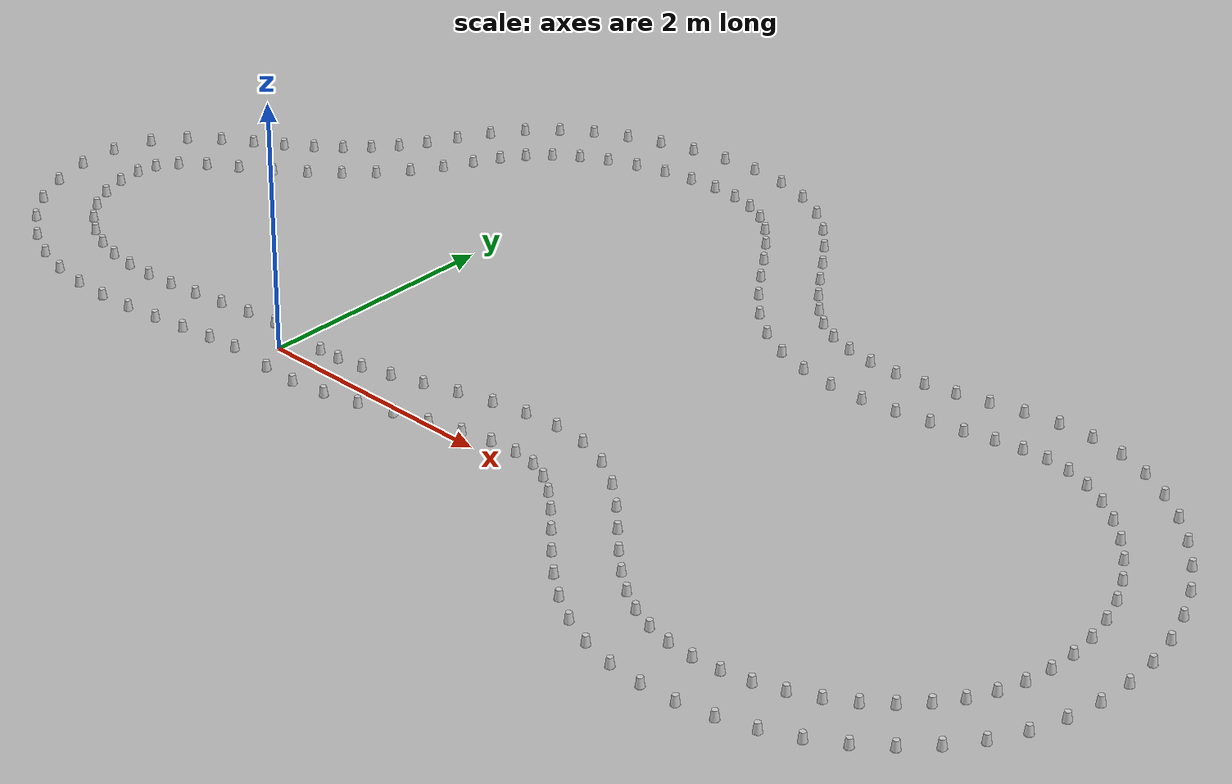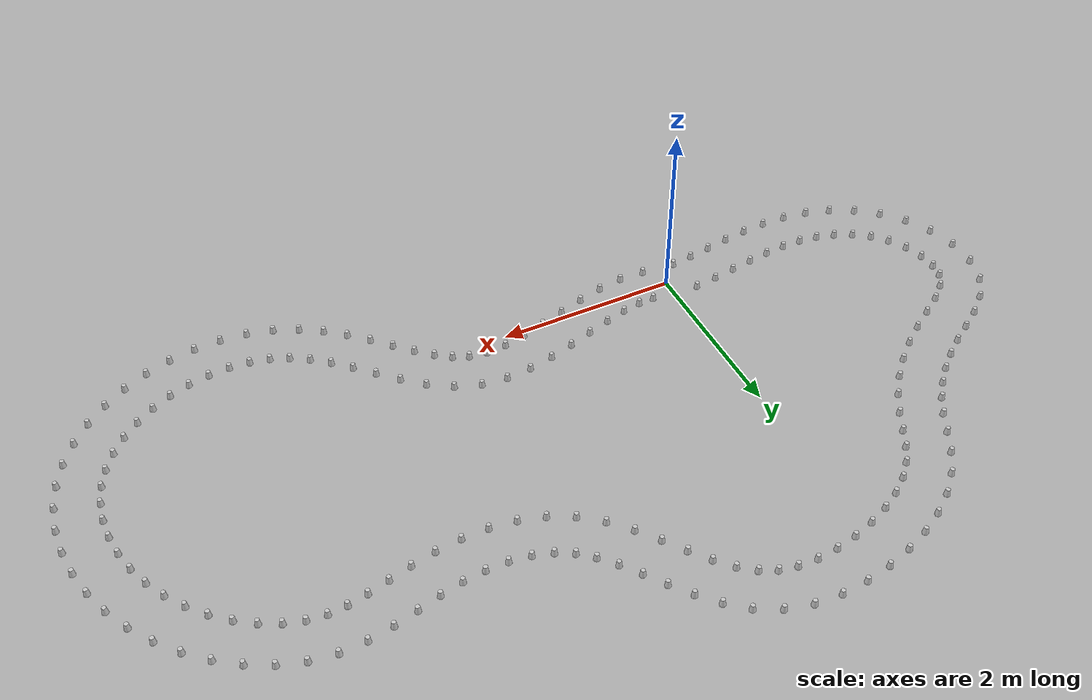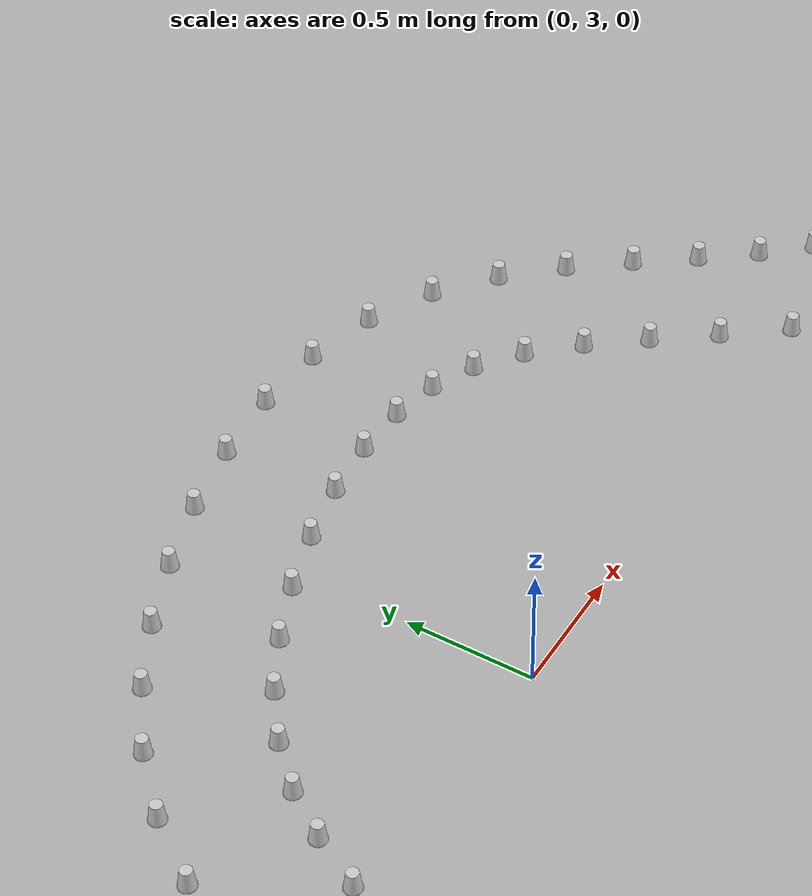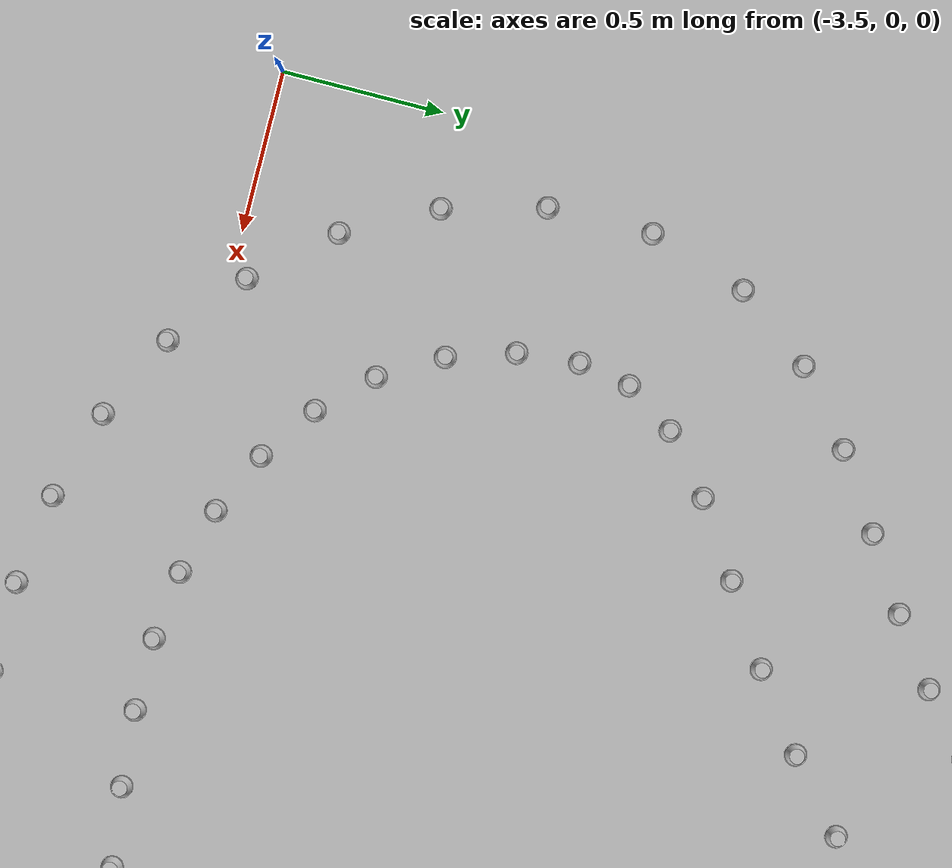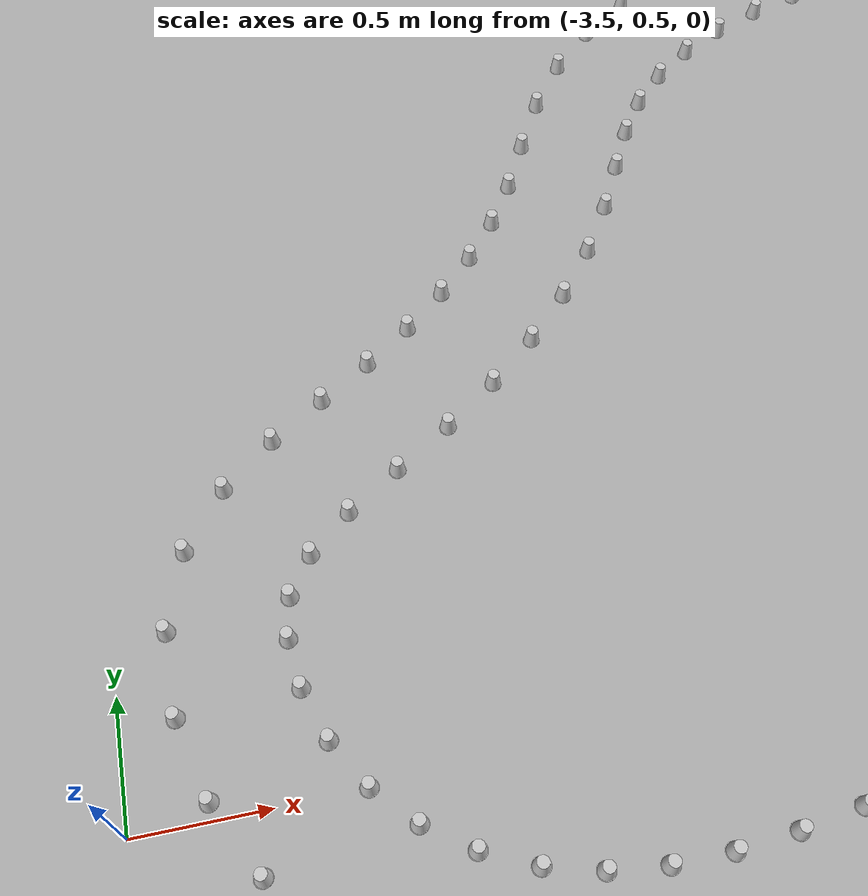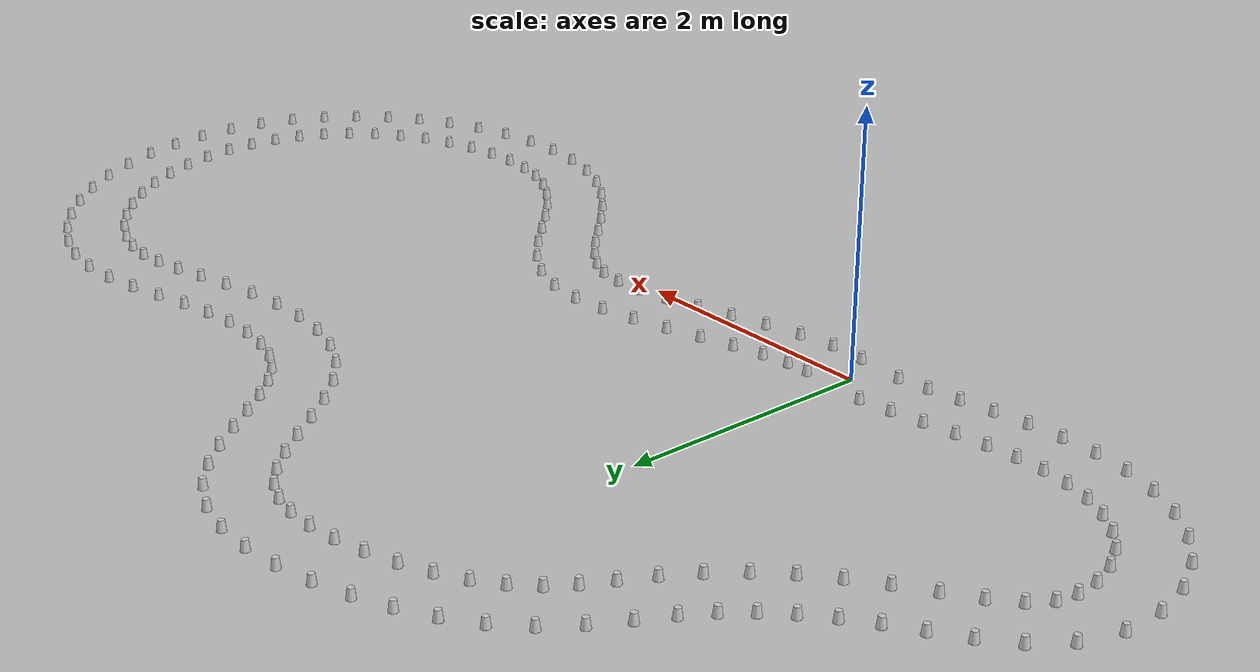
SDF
<?xml version='1.0' encoding='UTF-8'?>
<sdf version="1.4">
  <model name="some track">
    <include>
      <uri>model://cone_yellow</uri>
      <pose>0.16057702553425918 -0.2696065690785494 0 0 0 0</pose>
      <name>cone_right_0</name>
    </include>
    <include>
      <uri>model://cone_yellow</uri>
      <pose>0.4462135183603273 -0.27487489123374487 0 0 0 0</pose>
      <name>cone_right_1</name>
    </include>
    <include>
      <uri>model://cone_yellow</uri>
      <pose>0.7295635515692434 -0.23176047177801465 0 0 0 0</pose>
      <name>cone_right_2</name>
    </include>
    <include>
      <uri>model://cone_yellow</uri>
      <pose>1.009621545115699 -0.16014751046960102 0 0 0 0</pose>
      <name>cone_right_3</name>
    </include>
    <include>
      <uri>model://cone_yellow</uri>
      <pose>1.2860850442531968 -0.07525265990294092 0 0 0 0</pose>
      <name>cone_right_4</name>
    </include>
    <include>
      <uri>model://cone_yellow</uri>
      <pose>1.55693591314234 0.009820108914156661 0 0 0 0</pose>
      <name>cone_right_5</name>
    </include>
    <include>
      <uri>model://cone_yellow</uri>
      <pose>1.8184109718819805 0.08278212848105343 0 0 0 0</pose>
      <name>cone_right_6</name>
    </include>
    <include>
      <uri>model://cone_yellow</uri>
      <pose>2.065161582427895 0.13196095102887595 0 0 0 0</pose>
      <name>cone_right_7</name>
    </include>
    <include>
      <uri>model://cone_yellow</uri>
      <pose>2.2903811695183154 0.14694718545540525 0 0 0 0</pose>
      <name>cone_right_8</name>
    </include>
    <include>
      <uri>model://cone_yellow</uri>
      <pose>2.4868907920864447 0.12014791040707143 0 0 0 0</pose>
      <name>cone_right_9</name>
    </include>
    <include>
      <uri>model://cone_yellow</uri>
      <pose>2.653297674318319 0.0485682317721039 0 0 0 0</pose>
      <name>cone_right_10</name>
    </include>
    <include>
      <uri>model://cone_yellow</uri>
      <pose>2.8141762759219446 -0.06529516671053126 0 0 0 0</pose>
      <name>cone_right_11</name>
    </include>
    <include>
      <uri>model://cone_yellow</uri>
      <pose>2.9837020485423116 -0.21787920119430768 0 0 0 0</pose>
      <name>cone_right_12</name>
    </include>
    <include>
      <uri>model://cone_yellow</uri>
      <pose>3.160782871611418 -0.39640601052519925 0 0 0 0</pose>
      <name>cone_right_13</name>
    </include>
    <include>
      <uri>model://cone_yellow</uri>
      <pose>3.3466985853697095 -0.5844478315215427 0 0 0 0</pose>
      <name>cone_right_14</name>
    </include>
    <include>
      <uri>model://cone_yellow</uri>
      <pose>3.5434815158386486 -0.7679471313014337 0 0 0 0</pose>
      <name>cone_right_15</name>
    </include>
    <include>
      <uri>model://cone_yellow</uri>
      <pose>3.754890631120049 -0.93710170153505 0 0 0 0</pose>
      <name>cone_right_16</name>
    </include>
    <include>
      <uri>model://cone_yellow</uri>
      <pose>3.9869980350658545 -1.0831475211437183 0 0 0 0</pose>
      <name>cone_right_17</name>
    </include>
    <include>
      <uri>model://cone_yellow</uri>
      <pose>4.2453363014503624 -1.1958501912713702 0 0 0 0</pose>
      <name>cone_right_18</name>
    </include>
    <include>
      <uri>model://cone_yellow</uri>
      <pose>4.524760785806476 -1.2664050623270118 0 0 0 0</pose>
      <name>cone_right_19</name>
    </include>
    <include>
      <uri>model://cone_yellow</uri>
      <pose>4.813091398174899 -1.2940001868186919 0 0 0 0</pose>
      <name>cone_right_20</name>
    </include>
    <include>
      <uri>model://cone_yellow</uri>
      <pose>5.103863284799871 -1.281360196926903 0 0 0 0</pose>
      <name>cone_right_21</name>
    </include>
    <include>
      <uri>model://cone_yellow</uri>
      <pose>5.391497946825781 -1.2308123380767364 0 0 0 0</pose>
      <name>cone_right_22</name>
    </include>
    <include>
      <uri>model://cone_yellow</uri>
      <pose>5.670621560761798 -1.1441836103719871 0 0 0 0</pose>
      <name>cone_right_23</name>
    </include>
    <include>
      <uri>model://cone_yellow</uri>
      <pose>5.936070642860241 -1.023701703954187 0 0 0 0</pose>
      <name>cone_right_24</name>
    </include>
    <include>
      <uri>model://cone_yellow</uri>
      <pose>6.183293365645739 -0.8718750723203937 0 0 0 0</pose>
      <name>cone_right_25</name>
    </include>
    <include>
      <uri>model://cone_yellow</uri>
      <pose>6.4080498243137844 -0.6908569782302905 0 0 0 0</pose>
      <name>cone_right_26</name>
    </include>
    <include>
      <uri>model://cone_yellow</uri>
      <pose>6.605877582414392 -0.4825649052210537 0 0 0 0</pose>
      <name>cone_right_27</name>
    </include>
    <include>
      <uri>model://cone_yellow</uri>
      <pose>6.771946298747247 -0.24879948573437363 0 0 0 0</pose>
      <name>cone_right_28</name>
    </include>
    <include>
      <uri>model://cone_yellow</uri>
      <pose>6.901009156439126 0.00837783114800629 0 0 0 0</pose>
      <name>cone_right_29</name>
    </include>
    <include>
      <uri>model://cone_yellow</uri>
      <pose>6.989300870369228 0.28319362168000295 0 0 0 0</pose>
      <name>cone_right_30</name>
    </include>
    <include>
      <uri>model://cone_yellow</uri>
      <pose>7.036833661381702 0.5682752937907106 0 0 0 0</pose>
      <name>cone_right_31</name>
    </include>
    <include>
      <uri>model://cone_yellow</uri>
      <pose>7.045190282858235 0.8585344261001849 0 0 0 0</pose>
      <name>cone_right_32</name>
    </include>
    <include>
      <uri>model://cone_yellow</uri>
      <pose>7.015905142786229 1.1494248717455158 0 0 0 0</pose>
      <name>cone_right_33</name>
    </include>
    <include>
      <uri>model://cone_yellow</uri>
      <pose>6.95029144759791 1.436663869118246 0 0 0 0</pose>
      <name>cone_right_34</name>
    </include>
    <include>
      <uri>model://cone_yellow</uri>
      <pose>6.849413199238125 1.7160621998056649 0 0 0 0</pose>
      <name>cone_right_35</name>
    </include>
    <include>
      <uri>model://cone_yellow</uri>
      <pose>6.714120711443267 1.983392064751441 0 0 0 0</pose>
      <name>cone_right_36</name>
    </include>
    <include>
      <uri>model://cone_yellow</uri>
      <pose>6.5464996201125825 2.23361756676498 0 0 0 0</pose>
      <name>cone_right_37</name>
    </include>
    <include>
      <uri>model://cone_yellow</uri>
      <pose>6.351173098119541 2.4611443601456857 0 0 0 0</pose>
      <name>cone_right_38</name>
    </include>
    <include>
      <uri>model://cone_yellow</uri>
      <pose>6.132141129956805 2.661557210838708 0 0 0 0</pose>
      <name>cone_right_39</name>
    </include>
    <include>
      <uri>model://cone_yellow</uri>
      <pose>5.89291643988847 2.830273651518279 0 0 0 0</pose>
      <name>cone_right_40</name>
    </include>
    <include>
      <uri>model://cone_yellow</uri>
      <pose>5.636674353994719 2.962214225585794 0 0 0 0</pose>
      <name>cone_right_41</name>
    </include>
    <include>
      <uri>model://cone_yellow</uri>
      <pose>5.3664316625773925 3.0515357660057 0 0 0 0</pose>
      <name>cone_right_42</name>
    </include>
    <include>
      <uri>model://cone_yellow</uri>
      <pose>5.085576746899199 3.091348227126524 0 0 0 0</pose>
      <name>cone_right_43</name>
    </include>
    <include>
      <uri>model://cone_yellow</uri>
      <pose>4.802393271946856 3.07947666597638 0 0 0 0</pose>
      <name>cone_right_44</name>
    </include>
    <include>
      <uri>model://cone_yellow</uri>
      <pose>4.529882273792646 3.0310616928625937 0 0 0 0</pose>
      <name>cone_right_45</name>
    </include>
    <include>
      <uri>model://cone_yellow</uri>
      <pose>4.268231531802768 2.9656303531527044 0 0 0 0</pose>
      <name>cone_right_46</name>
    </include>
    <include>
      <uri>model://cone_yellow</uri>
      <pose>4.014474984739019 2.8999293741506267 0 0 0 0</pose>
      <name>cone_right_47</name>
    </include>
    <include>
      <uri>model://cone_yellow</uri>
      <pose>3.766338758948134 2.8483797728767053 0 0 0 0</pose>
      <name>cone_right_48</name>
    </include>
    <include>
      <uri>model://cone_yellow</uri>
      <pose>3.522290375646656 2.8213330328448727 0 0 0 0</pose>
      <name>cone_right_49</name>
    </include>
    <include>
      <uri>model://cone_yellow</uri>
      <pose>3.283099849598606 2.821902165215065 0 0 0 0</pose>
      <name>cone_right_50</name>
    </include>
    <include>
      <uri>model://cone_yellow</uri>
      <pose>3.0561654255043598 2.853077768164938 0 0 0 0</pose>
      <name>cone_right_51</name>
    </include>
    <include>
      <uri>model://cone_yellow</uri>
      <pose>2.8497668825284665 2.9170895133673675 0 0 0 0</pose>
      <name>cone_right_52</name>
    </include>
    <include>
      <uri>model://cone_yellow</uri>
      <pose>2.6707753788452 3.015109982758006 0 0 0 0</pose>
      <name>cone_right_53</name>
    </include>
    <include>
      <uri>model://cone_yellow</uri>
      <pose>2.5157652431113537 3.1474319119974163 0 0 0 0</pose>
      <name>cone_right_54</name>
    </include>
    <include>
      <uri>model://cone_yellow</uri>
      <pose>2.3665075363268717 3.314231336951808 0 0 0 0</pose>
      <name>cone_right_55</name>
    </include>
    <include>
      <uri>model://cone_yellow</uri>
      <pose>2.217583084522992 3.508136514404178 0 0 0 0</pose>
      <name>cone_right_56</name>
    </include>
    <include>
      <uri>model://cone_yellow</uri>
      <pose>2.064810855817733 3.7170634927490007 0 0 0 0</pose>
      <name>cone_right_57</name>
    </include>
    <include>
      <uri>model://cone_yellow</uri>
      <pose>1.9016050899032284 3.927977367859132 0 0 0 0</pose>
      <name>cone_right_58</name>
    </include>
    <include>
      <uri>model://cone_yellow</uri>
      <pose>1.7188184940298057 4.127777655350107 0 0 0 0</pose>
      <name>cone_right_59</name>
    </include>
    <include>
      <uri>model://cone_yellow</uri>
      <pose>1.5046794247891082 4.302292068844007 0 0 0 0</pose>
      <name>cone_right_60</name>
    </include>
    <include>
      <uri>model://cone_yellow</uri>
      <pose>1.2479321590725883 4.4334718629202685 0 0 0 0</pose>
      <name>cone_right_61</name>
    </include>
    <include>
      <uri>model://cone_yellow</uri>
      <pose>0.9618197228994807 4.506488829544563 0 0 0 0</pose>
      <name>cone_right_62</name>
    </include>
    <include>
      <uri>model://cone_yellow</uri>
      <pose>0.6664405882224226 4.525723142923614 0 0 0 0</pose>
      <name>cone_right_63</name>
    </include>
    <include>
      <uri>model://cone_yellow</uri>
      <pose>0.37017862938831186 4.501901147359419 0 0 0 0</pose>
      <name>cone_right_64</name>
    </include>
    <include>
      <uri>model://cone_yellow</uri>
      <pose>0.07915263631946493 4.443967618937625 0 0 0 0</pose>
      <name>cone_right_65</name>
    </include>
    <include>
      <uri>model://cone_yellow</uri>
      <pose>-0.20084552313838872 4.359227349081764 0 0 0 0</pose>
      <name>cone_right_66</name>
    </include>
    <include>
      <uri>model://cone_yellow</uri>
      <pose>-0.4664712477345053 4.2506268668593865 0 0 0 0</pose>
      <name>cone_right_67</name>
    </include>
    <include>
      <uri>model://cone_yellow</uri>
      <pose>-0.7161193016202181 4.1152131954096856 0 0 0 0</pose>
      <name>cone_right_68</name>
    </include>
    <include>
      <uri>model://cone_yellow</uri>
      <pose>-0.9449397877610511 3.9498409537896744 0 0 0 0</pose>
      <name>cone_right_69</name>
    </include>
    <include>
      <uri>model://cone_yellow</uri>
      <pose>-1.1469517468467465 3.751356383576832 0 0 0 0</pose>
      <name>cone_right_70</name>
    </include>
    <include>
      <uri>model://cone_yellow</uri>
      <pose>-1.3152064966528787 3.5183340037414292 0 0 0 0</pose>
      <name>cone_right_71</name>
    </include>
    <include>
      <uri>model://cone_yellow</uri>
      <pose>-1.44949385243654 3.27265575414268 0 0 0 0</pose>
      <name>cone_right_72</name>
    </include>
    <include>
      <uri>model://cone_yellow</uri>
      <pose>-1.5684490432365008 3.0448964232284066 0 0 0 0</pose>
      <name>cone_right_73</name>
    </include>
    <include>
      <uri>model://cone_yellow</uri>
      <pose>-1.69326124039407 2.849249129324669 0 0 0 0</pose>
      <name>cone_right_74</name>
    </include>
    <include>
      <uri>model://cone_yellow</uri>
      <pose>-1.8346977910460227 2.674117116525196 0 0 0 0</pose>
      <name>cone_right_75</name>
    </include>
    <include>
      <uri>model://cone_yellow</uri>
      <pose>-1.9955717061319183 2.5110249070425965 0 0 0 0</pose>
      <name>cone_right_76</name>
    </include>
    <include>
      <uri>model://cone_yellow</uri>
      <pose>-2.175505919451435 2.358146186112239 0 0 0 0</pose>
      <name>cone_right_77</name>
    </include>
    <include>
      <uri>model://cone_yellow</uri>
      <pose>-2.3738822554193657 2.2140211982210785 0 0 0 0</pose>
      <name>cone_right_78</name>
    </include>
    <include>
      <uri>model://cone_yellow</uri>
      <pose>-2.58929641713167 2.075701040131997 0 0 0 0</pose>
      <name>cone_right_79</name>
    </include>
    <include>
      <uri>model://cone_yellow</uri>
      <pose>-2.8143103783452847 1.9269686991888437 0 0 0 0</pose>
      <name>cone_right_80</name>
    </include>
    <include>
      <uri>model://cone_yellow</uri>
      <pose>-3.0290900271245333 1.7478253347574935 0 0 0 0</pose>
      <name>cone_right_81</name>
    </include>
    <include>
      <uri>model://cone_yellow</uri>
      <pose>-3.206184037603983 1.5125716070937845 0 0 0 0</pose>
      <name>cone_right_82</name>
    </include>
    <include>
      <uri>model://cone_yellow</uri>
      <pose>-3.3039605652196795 1.2049377471436313 0 0 0 0</pose>
      <name>cone_right_83</name>
    </include>
    <include>
      <uri>model://cone_yellow</uri>
      <pose>-3.30097146628891 0.877387054919917 0 0 0 0</pose>
      <name>cone_right_84</name>
    </include>
    <include>
      <uri>model://cone_yellow</uri>
      <pose>-3.217568246108058 0.5647871101711683 0 0 0 0</pose>
      <name>cone_right_85</name>
    </include>
    <include>
      <uri>model://cone_yellow</uri>
      <pose>-3.0691682715561064 0.28418184627799825 0 0 0 0</pose>
      <name>cone_right_86</name>
    </include>
    <include>
      <uri>model://cone_yellow</uri>
      <pose>-2.8668018605683763 0.04834397988208522 0 0 0 0</pose>
      <name>cone_right_87</name>
    </include>
    <include>
      <uri>model://cone_yellow</uri>
      <pose>-2.6262607391591577 -0.13685773076589713 0 0 0 0</pose>
      <name>cone_right_88</name>
    </include>
    <include>
      <uri>model://cone_yellow</uri>
      <pose>-2.361519552549033 -0.2716905795545057 0 0 0 0</pose>
      <name>cone_right_89</name>
    </include>
    <include>
      <uri>model://cone_yellow</uri>
      <pose>-2.084167711182787 -0.35763661052827744 0 0 0 0</pose>
      <name>cone_right_90</name>
    </include>
    <include>
      <uri>model://cone_yellow</uri>
      <pose>-1.802826144558984 -0.3989759853224717 0 0 0 0</pose>
      <name>cone_right_91</name>
    </include>
    <include>
      <uri>model://cone_yellow</uri>
      <pose>-1.52352857356794 -0.4047111541001933 0 0 0 0</pose>
      <name>cone_right_92</name>
    </include>
    <include>
      <uri>model://cone_yellow</uri>
      <pose>-1.2489096224643115 -0.3851625902910519 0 0 0 0</pose>
      <name>cone_right_93</name>
    </include>
    <include>
      <uri>model://cone_yellow</uri>
      <pose>-0.9801931826911005 -0.35009223136563894 0 0 0 0</pose>
      <name>cone_right_94</name>
    </include>
    <include>
      <uri>model://cone_yellow</uri>
      <pose>-0.7182699728685241 -0.30846058811450416 0 0 0 0</pose>
      <name>cone_right_95</name>
    </include>
    <include>
      <uri>model://cone_yellow</uri>
      <pose>-0.4642429530123596 -0.26857643968872136 0 0 0 0</pose>
      <name>cone_right_96</name>
    </include>
    <include>
      <uri>model://cone_yellow</uri>
      <pose>-0.21964332903700404 -0.23821839865959615 0 0 0 0</pose>
      <name>cone_right_97</name>
    </include>
    <include>
      <uri>model://cone_blue</uri>
      <pose>0.26497041351446926 0.16811711150774616 0 0 0 0</pose>
      <name>cone_left_0</name>
    </include>
    <include>
      <uri>model://cone_blue</uri>
      <pose>0.444533729402922 0.17512197354317624 0 0 0 0</pose>
      <name>cone_left_1</name>
    </include>
    <include>
      <uri>model://cone_blue</uri>
      <pose>0.6575833248351102 0.2124453892361133 0 0 0 0</pose>
      <name>cone_left_2</name>
    </include>
    <include>
      <uri>model://cone_blue</uri>
      <pose>0.8966722301171343 0.2754468561621944 0 0 0 0</pose>
      <name>cone_left_3</name>
    </include>
    <include>
      <uri>model://cone_blue</uri>
      <pose>1.1536503502562827 0.35481832473325126 0 0 0 0</pose>
      <name>cone_left_4</name>
    </include>
    <include>
      <uri>model://cone_blue</uri>
      <pose>1.4220832713527425 0.4391390637744872 0 0 0 0</pose>
      <name>cone_left_5</name>
    </include>
    <include>
      <uri>model://cone_blue</uri>
      <pose>1.6972816235684542 0.516173038603936 0 0 0 0</pose>
      <name>cone_left_6</name>
    </include>
    <include>
      <uri>model://cone_blue</uri>
      <pose>1.9761414952084326 0.5730679948078654 0 0 0 0</pose>
      <name>cone_left_7</name>
    </include>
    <include>
      <uri>model://cone_blue</uri>
      <pose>2.2570169117952372 0.5957086213058893 0 0 0 0</pose>
      <name>cone_left_8</name>
    </include>
    <include>
      <uri>model://cone_blue</uri>
      <pose>2.5386342646564555 0.5671631372689722 0 0 0 0</pose>
      <name>cone_left_9</name>
    </include>
    <include>
      <uri>model://cone_blue</uri>
      <pose>2.814783783782049 0.4685947029025178 0 0 0 0</pose>
      <name>cone_left_10</name>
    </include>
    <include>
      <uri>model://cone_blue</uri>
      <pose>3.0638376361736066 0.3090966136443394 0 0 0 0</pose>
      <name>cone_left_11</name>
    </include>
    <include>
      <uri>model://cone_blue</uri>
      <pose>3.2817040862182916 0.11930737259083588 0 0 0 0</pose>
      <name>cone_left_12</name>
    </include>
    <include>
      <uri>model://cone_blue</uri>
      <pose>3.4796937265234327 -0.07892236272694159 0 0 0 0</pose>
      <name>cone_left_13</name>
    </include>
    <include>
      <uri>model://cone_blue</uri>
      <pose>3.6666989652881488 -0.2680623753892254 0 0 0 0</pose>
      <name>cone_left_14</name>
    </include>
    <include>
      <uri>model://cone_blue</uri>
      <pose>3.850142542073463 -0.43861596820171983 0 0 0 0</pose>
      <name>cone_left_15</name>
    </include>
    <include>
      <uri>model://cone_blue</uri>
      <pose>4.035155104053305 -0.5850337745501506 0 0 0 0</pose>
      <name>cone_left_16</name>
    </include>
    <include>
      <uri>model://cone_blue</uri>
      <pose>4.224538824106901 -0.7009507478164737 0 0 0 0</pose>
      <name>cone_left_17</name>
    </include>
    <include>
      <uri>model://cone_blue</uri>
      <pose>4.421361043338492 -0.7817061459885515 0 0 0 0</pose>
      <name>cone_left_18</name>
    </include>
    <include>
      <uri>model://cone_blue</uri>
      <pose>4.630284807033143 -0.8289525723990726 0 0 0 0</pose>
      <name>cone_left_19</name>
    </include>
    <include>
      <uri>model://cone_blue</uri>
      <pose>4.852053937232215 -0.8456901149374023 0 0 0 0</pose>
      <name>cone_left_20</name>
    </include>
    <include>
      <uri>model://cone_blue</uri>
      <pose>5.081043892361956 -0.8319391523275602 0 0 0 0</pose>
      <name>cone_left_21</name>
    </include>
    <include>
      <uri>model://cone_blue</uri>
      <pose>5.310743775948462 -0.7881174500489696 0 0 0 0</pose>
      <name>cone_left_22</name>
    </include>
    <include>
      <uri>model://cone_blue</uri>
      <pose>5.534587651723707 -0.7152374883568595 0 0 0 0</pose>
      <name>cone_left_23</name>
    </include>
    <include>
      <uri>model://cone_blue</uri>
      <pose>5.747621380554221 -0.615061427505185 0 0 0 0</pose>
      <name>cone_left_24</name>
    </include>
    <include>
      <uri>model://cone_blue</uri>
      <pose>5.945495199771188 -0.4898383825814375 0 0 0 0</pose>
      <name>cone_left_25</name>
    </include>
    <include>
      <uri>model://cone_blue</uri>
      <pose>6.123569589103364 -0.3421866528875339 0 0 0 0</pose>
      <name>cone_left_26</name>
    </include>
    <include>
      <uri>model://cone_blue</uri>
      <pose>6.277427559924972 -0.174960316947896 0 0 0 0</pose>
      <name>cone_left_27</name>
    </include>
    <include>
      <uri>model://cone_blue</uri>
      <pose>6.403020028360574 0.00886969561756687 0 0 0 0</pose>
      <name>cone_left_28</name>
    </include>
    <include>
      <uri>model://cone_blue</uri>
      <pose>6.496968695099347 0.2064972537201974 0 0 0 0</pose>
      <name>cone_left_29</name>
    </include>
    <include>
      <uri>model://cone_blue</uri>
      <pose>6.559612729699583 0.4168652408362874 0 0 0 0</pose>
      <name>cone_left_30</name>
    </include>
    <include>
      <uri>model://cone_blue</uri>
      <pose>6.592375387427196 0.6386801424403711 0 0 0 0</pose>
      <name>cone_left_31</name>
    </include>
    <include>
      <uri>model://cone_blue</uri>
      <pose>6.595296122851649 0.8682937699289229 0 0 0 0</pose>
      <name>cone_left_32</name>
    </include>
    <include>
      <uri>model://cone_blue</uri>
      <pose>6.568462735936695 1.1015156601813894 0 0 0 0</pose>
      <name>cone_left_33</name>
    </include>
    <include>
      <uri>model://cone_blue</uri>
      <pose>6.512184228201245 1.3338919648227519 0 0 0 0</pose>
      <name>cone_left_34</name>
    </include>
    <include>
      <uri>model://cone_blue</uri>
      <pose>6.427018805651606 1.5608752922822595 0 0 0 0</pose>
      <name>cone_left_35</name>
    </include>
    <include>
      <uri>model://cone_blue</uri>
      <pose>6.3137514456099195 1.7779548456891061 0 0 0 0</pose>
      <name>cone_left_36</name>
    </include>
    <include>
      <uri>model://cone_blue</uri>
      <pose>6.174020986298885 1.9811107998214366 0 0 0 0</pose>
      <name>cone_left_37</name>
    </include>
    <include>
      <uri>model://cone_blue</uri>
      <pose>6.011291761259343 2.166219493689626 0 0 0 0</pose>
      <name>cone_left_38</name>
    </include>
    <include>
      <uri>model://cone_blue</uri>
      <pose>5.830198025710423 2.327895163554245 0 0 0 0</pose>
      <name>cone_left_39</name>
    </include>
    <include>
      <uri>model://cone_blue</uri>
      <pose>5.635861295099835 2.460919278946769 0 0 0 0</pose>
      <name>cone_left_40</name>
    </include>
    <include>
      <uri>model://cone_blue</uri>
      <pose>5.433740483059179 2.5605702986715215 0 0 0 0</pose>
      <name>cone_left_41</name>
    </include>
    <include>
      <uri>model://cone_blue</uri>
      <pose>5.229453038998413 2.6228903919697633 0 0 0 0</pose>
      <name>cone_left_42</name>
    </include>
    <include>
      <uri>model://cone_blue</uri>
      <pose>5.0282303462895515 2.6450171948902277 0 0 0 0</pose>
      <name>cone_left_43</name>
    </include>
    <include>
      <uri>model://cone_blue</uri>
      <pose>4.827194790811951 2.630160647274638 0 0 0 0</pose>
      <name>cone_left_44</name>
    </include>
    <include>
      <uri>model://cone_blue</uri>
      <pose>4.611508617797497 2.5885267903244986 0 0 0 0</pose>
      <name>cone_left_45</name>
    </include>
    <include>
      <uri>model://cone_blue</uri>
      <pose>4.378155991625488 2.529262832440309 0 0 0 0</pose>
      <name>cone_left_46</name>
    </include>
    <include>
      <uri>model://cone_blue</uri>
      <pose>4.1272749172796175 2.464296300086184 0 0 0 0</pose>
      <name>cone_left_47</name>
    </include>
    <include>
      <uri>model://cone_blue</uri>
      <pose>3.85831239729388 2.4078790920038537 0 0 0 0</pose>
      <name>cone_left_48</name>
    </include>
    <include>
      <uri>model://cone_blue</uri>
      <pose>3.5735768171826257 2.3742651398861216 0 0 0 0</pose>
      <name>cone_left_49</name>
    </include>
    <include>
      <uri>model://cone_blue</uri>
      <pose>3.2846260694993537 2.371904753386047 0 0 0 0</pose>
      <name>cone_left_50</name>
    </include>
    <include>
      <uri>model://cone_blue</uri>
      <pose>2.998700436266793 2.4067619886859615 0 0 0 0</pose>
      <name>cone_left_51</name>
    </include>
    <include>
      <uri>model://cone_blue</uri>
      <pose>2.722158665043487 2.4855618284729846 0 0 0 0</pose>
      <name>cone_left_52</name>
    </include>
    <include>
      <uri>model://cone_blue</uri>
      <pose>2.462758432083286 2.616074959408111 0 0 0 0</pose>
      <name>cone_left_53</name>
    </include>
    <include>
      <uri>model://cone_blue</uri>
      <pose>2.2314603723698307 2.7986185801526515 0 0 0 0</pose>
      <name>cone_left_54</name>
    </include>
    <include>
      <uri>model://cone_blue</uri>
      <pose>2.034404669588492 3.010574152113131 0 0 0 0</pose>
      <name>cone_left_55</name>
    </include>
    <include>
      <uri>model://cone_blue</uri>
      <pose>1.8615567439935394 3.232917974241625 0 0 0 0</pose>
      <name>cone_left_56</name>
    </include>
    <include>
      <uri>model://cone_blue</uri>
      <pose>1.7016438737524802 3.4513385538787165 0 0 0 0</pose>
      <name>cone_left_57</name>
    </include>
    <include>
      <uri>model://cone_blue</uri>
      <pose>1.5457980654586914 3.6524753508866157 0 0 0 0</pose>
      <name>cone_left_58</name>
    </include>
    <include>
      <uri>model://cone_blue</uri>
      <pose>1.3877128581473692 3.8230334053848494 0 0 0 0</pose>
      <name>cone_left_59</name>
    </include>
    <include>
      <uri>model://cone_blue</uri>
      <pose>1.2237061415123813 3.9507895594863984 0 0 0 0</pose>
      <name>cone_left_60</name>
    </include>
    <include>
      <uri>model://cone_blue</uri>
      <pose>1.0508301654879812 4.028934096914456 0 0 0 0</pose>
      <name>cone_left_61</name>
    </include>
    <include>
      <uri>model://cone_blue</uri>
      <pose>0.8587359281504436 4.068454891064747 0 0 0 0</pose>
      <name>cone_left_62</name>
    </include>
    <include>
      <uri>model://cone_blue</uri>
      <pose>0.6426027825584347 4.07635496534411 0 0 0 0</pose>
      <name>cone_left_63</name>
    </include>
    <include>
      <uri>model://cone_blue</uri>
      <pose>0.409601368120673 4.053631309347937 0 0 0 0</pose>
      <name>cone_left_64</name>
    </include>
    <include>
      <uri>model://cone_blue</uri>
      <pose>0.16916740867045962 4.003062480887955 0 0 0 0</pose>
      <name>cone_left_65</name>
    </include>
    <include>
      <uri>model://cone_blue</uri>
      <pose>-0.06896828056895105 3.928985100003083 0 0 0 0</pose>
      <name>cone_left_66</name>
    </include>
    <include>
      <uri>model://cone_blue</uri>
      <pose>-0.2947276510495065 3.8346892068696943 0 0 0 0</pose>
      <name>cone_left_67</name>
    </include>
    <include>
      <uri>model://cone_blue</uri>
      <pose>-0.4996626829659965 3.720692559395825 0 0 0 0</pose>
      <name>cone_left_68</name>
    </include>
    <include>
      <uri>model://cone_blue</uri>
      <pose>-0.6788736466999586 3.5869238715506886 0 0 0 0</pose>
      <name>cone_left_69</name>
    </include>
    <include>
      <uri>model://cone_blue</uri>
      <pose>-0.8285918749087159 3.433320234783018 0 0 0 0</pose>
      <name>cone_left_70</name>
    </include>
    <include>
      <uri>model://cone_blue</uri>
      <pose>-0.9473904551912669 3.2590824663428832 0 0 0 0</pose>
      <name>cone_left_71</name>
    </include>
    <include>
      <uri>model://cone_blue</uri>
      <pose>-1.0534010859749054 3.059089557480453 0 0 0 0</pose>
      <name>cone_left_72</name>
    </include>
    <include>
      <uri>model://cone_blue</uri>
      <pose>-1.169559088547536 2.836601430373956 0 0 0 0</pose>
      <name>cone_left_73</name>
    </include>
    <include>
      <uri>model://cone_blue</uri>
      <pose>-1.3130748858675068 2.6085037538097855 0 0 0 0</pose>
      <name>cone_left_74</name>
    </include>
    <include>
      <uri>model://cone_blue</uri>
      <pose>-1.4829394046388749 2.3934642391263714 0 0 0 0</pose>
      <name>cone_left_75</name>
    </include>
    <include>
      <uri>model://cone_blue</uri>
      <pose>-1.6736496860870664 2.196594925949441 0 0 0 0</pose>
      <name>cone_left_76</name>
    </include>
    <include>
      <uri>model://cone_blue</uri>
      <pose>-1.8828419992420338 2.016316067767373 0 0 0 0</pose>
      <name>cone_left_77</name>
    </include>
    <include>
      <uri>model://cone_blue</uri>
      <pose>-2.108393722518624 1.8506813588169584 0 0 0 0</pose>
      <name>cone_left_78</name>
    </include>
    <include>
      <uri>model://cone_blue</uri>
      <pose>-2.345582022946181 1.6974110798279993 0 0 0 0</pose>
      <name>cone_left_79</name>
    </include>
    <include>
      <uri>model://cone_blue</uri>
      <pose>-2.5661503515488437 1.5515800990683957 0 0 0 0</pose>
      <name>cone_left_80</name>
    </include>
    <include>
      <uri>model://cone_blue</uri>
      <pose>-2.738974300531835 1.4038298912068692 0 0 0 0</pose>
      <name>cone_left_81</name>
    </include>
    <include>
      <uri>model://cone_blue</uri>
      <pose>-2.8404193334806025 1.2504338928717833 0 0 0 0</pose>
      <name>cone_left_82</name>
    </include>
    <include>
      <uri>model://cone_blue</uri>
      <pose>-2.8694846426954155 1.0877597938132821 0 0 0 0</pose>
      <name>cone_left_83</name>
    </include>
    <include>
      <uri>model://cone_blue</uri>
      <pose>-2.85134305863146 0.895670791612023 0 0 0 0</pose>
      <name>cone_left_84</name>
    </include>
    <include>
      <uri>model://cone_blue</uri>
      <pose>-2.7851767632077586 0.6894370420415066 0 0 0 0</pose>
      <name>cone_left_85</name>
    </include>
    <include>
      <uri>model://cone_blue</uri>
      <pose>-2.675140206703461 0.5015338283450583 0 0 0 0</pose>
      <name>cone_left_86</name>
    </include>
    <include>
      <uri>model://cone_blue</uri>
      <pose>-2.53060271583555 0.3474595680431103 0 0 0 0</pose>
      <name>cone_left_87</name>
    </include>
    <include>
      <uri>model://cone_blue</uri>
      <pose>-2.3571769523728876 0.223827610894616 0 0 0 0</pose>
      <name>cone_left_88</name>
    </include>
    <include>
      <uri>model://cone_blue</uri>
      <pose>-2.1623531462158243 0.13183481318839874 0 0 0 0</pose>
      <name>cone_left_89</name>
    </include>
    <include>
      <uri>model://cone_blue</uri>
      <pose>-1.9557252102939169 0.0736434886710858 0 0 0 0</pose>
      <name>cone_left_90</name>
    </include>
    <include>
      <uri>model://cone_blue</uri>
      <pose>-1.7415130810740536 0.0468274559451938 0 0 0 0</pose>
      <name>cone_left_91</name>
    </include>
    <include>
      <uri>model://cone_blue</uri>
      <pose>-1.5169900756676125 0.04524134122037651 0 0 0 0</pose>
      <name>cone_left_92</name>
    </include>
    <include>
      <uri>model://cone_blue</uri>
      <pose>-1.2823074501909977 0.06359634845350237 0 0 0 0</pose>
      <name>cone_left_93</name>
    </include>
    <include>
      <uri>model://cone_blue</uri>
      <pose>-1.0390271935722717 0.09604514564242372 0 0 0 0</pose>
      <name>cone_left_94</name>
    </include>
    <include>
      <uri>model://cone_blue</uri>
      <pose>-0.7890444675622835 0.13593897410495054 0 0 0 0</pose>
      <name>cone_left_95</name>
    </include>
    <include>
      <uri>model://cone_blue</uri>
      <pose>-0.5340421925163146 0.17597734351941818 0 0 0 0</pose>
      <name>cone_left_96</name>
    </include>
    <include>
      <uri>model://cone_blue</uri>
      <pose>-0.2752750428910483 0.2083295969843903 0 0 0 0</pose>
      <name>cone_left_97</name>
    </include>

  </model>
</sdf>

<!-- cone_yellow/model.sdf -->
<sdf version='1.4'>
  <model name="cone_yellow">
    <link name="link">
    <collision name="collision"><geometry><box><size> 0.05 0.05 0.01</size>
             </box></geometry></collision>
      <visual name="visual">
        <geometry>
          <mesh>
            <uri>model://cup.dae</uri>
            <scale>1 1 1</scale>
          </mesh>
        </geometry>
        <material>
            <script>
              <uri>model://cone_yellow/materials/scripts</uri>
              <uri>model://cone_yellow/materials/textures</uri>
              <name>cone_yellow/Image</name>
            </script>
        </material>
      </visual>
    </link>
  </model>
</sdf>

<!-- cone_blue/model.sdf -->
<sdf version='1.4'>
  <model name="cone_blue">
    <link name="link">
    <collision name="collision"><geometry><box><size> 0.05 0.05 0.01</size>
             </box></geometry></collision>
      <visual name="visual">
        <geometry>
          <mesh>
            <uri>model://cup.dae</uri>
            <scale>1 1 1</scale>
          </mesh>
        </geometry>
        <material>
            <script>
              <uri>model://cone_blue/materials/scripts</uri>
              <uri>model://cone_blue/materials/textures</uri>
              <name>cone_blue/Image</name>
            </script>
        </material>
      </visual>
    </link>
  </model>
</sdf>
